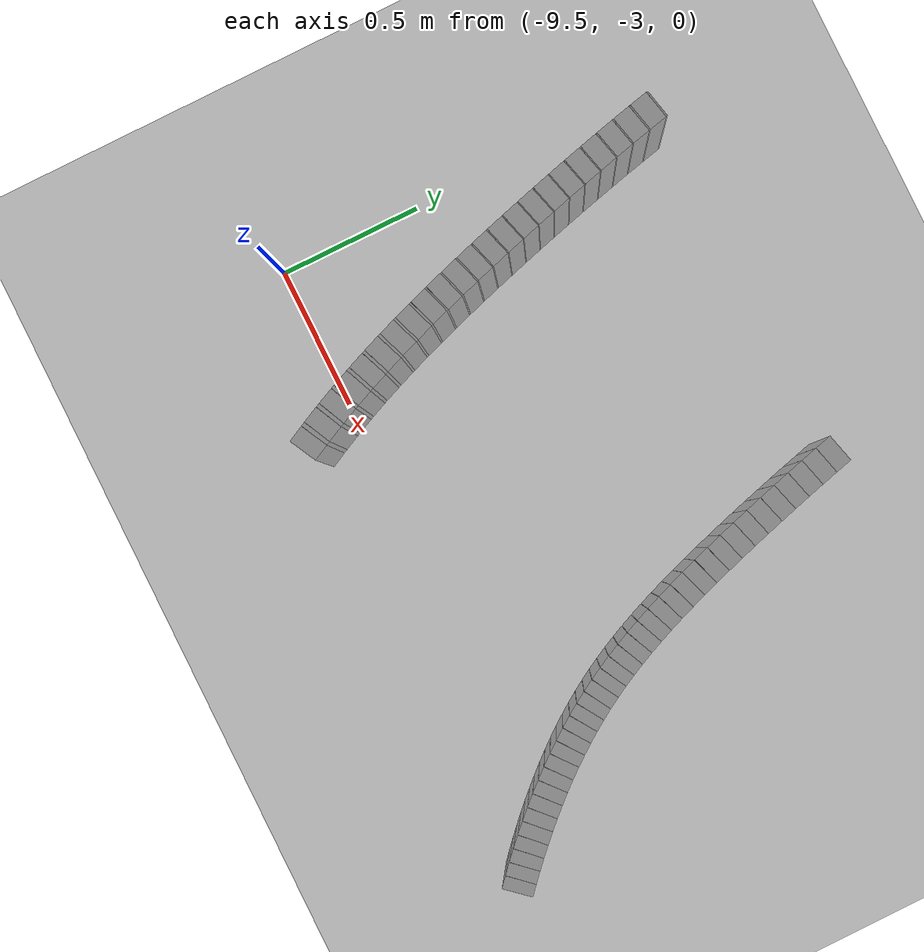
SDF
<sdf version="1.6">
 <world name="default">
  <include><uri>model://ground_plane</uri></include>
  <include><uri>model://sun</uri></include>
  <model name="wall_395_outward">
   <static>true</static>
   <link name="link">
    <collision name="collision">
     <geometry><box><size>0.05821195113618507 0.1 0.45</size></box></geometry>
    </collision>
    <visual name="visual">
     <geometry><box><size>0.05821195113618507 0.1 0.45</size></box></geometry>
     <material>
      <script><uri>file://media/materials/scripts/gazebo.material</uri><name>Gazebo/Gray</name></script>
     </material>
    </visual>
   </link>
   <pose>-8.1308858343698 -1.6789535075727118 0.225 0 0 -1.318381393351221</pose>
  </model>
  <model name="wall_396_outward">
   <static>true</static>
   <link name="link">
    <collision name="collision">
     <geometry><box><size>0.05814935245894412 0.1 0.45</size></box></geometry>
    </collision>
    <visual name="visual">
     <geometry><box><size>0.05814935245894412 0.1 0.45</size></box></geometry>
     <material>
      <script><uri>file://media/materials/scripts/gazebo.material</uri><name>Gazebo/Gray</name></script>
     </material>
    </visual>
   </link>
   <pose>-8.116180850264804 -1.7352448836678194 0.225 0 0 -1.312168659641519</pose>
  </model>
  <model name="wall_397_outward">
   <static>true</static>
   <link name="link">
    <collision name="collision">
     <geometry><box><size>0.058085781952576014 0.1 0.45</size></box></geometry>
    </collision>
    <visual name="visual">
     <geometry><box><size>0.058085781952576014 0.1 0.45</size></box></geometry>
     <material>
      <script><uri>file://media/materials/scripts/gazebo.material</uri><name>Gazebo/Gray</name></script>
     </material>
    </visual>
   </link>
   <pose>-8.101152480375973 -1.7913855165712227 0.225 0 0 -1.3063029133184803</pose>
  </model>
  <model name="wall_398_outward">
   <static>true</static>
   <link name="link">
    <collision name="collision">
     <geometry><box><size>0.05797990014977049 0.1 0.45</size></box></geometry>
    </collision>
    <visual name="visual">
     <geometry><box><size>0.05797990014977049 0.1 0.45</size></box></geometry>
     <material>
      <script><uri>file://media/materials/scripts/gazebo.material</uri><name>Gazebo/Gray</name></script>
     </material>
    </visual>
   </link>
   <pose>-8.085822552971315 -1.8473567301709464 0.225 0 0 -1.3006175737035919</pose>
  </model>
  <model name="wall_399_outward">
   <static>true</static>
   <link name="link">
    <collision name="collision">
     <geometry><box><size>0.057799627029974064 0.1 0.45</size></box></geometry>
    </collision>
    <visual name="visual">
     <geometry><box><size>0.057799627029974064 0.1 0.45</size></box></geometry>
     <material>
      <script><uri>file://media/materials/scripts/gazebo.material</uri><name>Gazebo/Gray</name></script>
     </material>
    </visual>
   </link>
   <pose>-8.070213079575492 -1.9031020609063418 0.225 0 0 -1.2949228306404827</pose>
  </model>
  <model name="wall_400_outward">
   <static>true</static>
   <link name="link">
    <collision name="collision">
     <geometry><box><size>0.057512977800352534 0.1 0.45</size></box></geometry>
    </collision>
    <visual name="visual">
     <geometry><box><size>0.057512977800352534 0.1 0.45</size></box></geometry>
     <material>
      <script><uri>file://media/materials/scripts/gazebo.material</uri><name>Gazebo/Gray</name></script>
     </material>
    </visual>
   </link>
   <pose>-8.054344472347807 -1.9585313614264463 0.225 0 0 -1.2889996588835113</pose>
  </model>
  <model name="wall_401_outward">
   <static>true</static>
   <link name="link">
    <collision name="collision">
     <geometry><box><size>0.05709938101718008 0.1 0.45</size></box></geometry>
    </collision>
    <visual name="visual">
     <geometry><box><size>0.05709938101718008 0.1 0.45</size></box></geometry>
     <material>
      <script><uri>file://media/materials/scripts/gazebo.material</uri><name>Gazebo/Gray</name></script>
     </material>
    </visual>
   </link>
   <pose>-8.038233650260816 -2.013525962175695 0.225 0 0 -1.2826119508472835</pose>
  </model>
  <model name="wall_402_outward">
   <static>true</static>
   <link name="link">
    <collision name="collision">
     <geometry><box><size>0.05653692180230691 0.1 0.45</size></box></geometry>
    </collision>
    <visual name="visual">
     <geometry><box><size>0.05653692180230691 0.1 0.45</size></box></geometry>
     <material>
      <script><uri>file://media/materials/scripts/gazebo.material</uri><name>Gazebo/Gray</name></script>
     </material>
    </visual>
   </link>
   <pose>-8.021893052603005 -2.067943298795373 0.225 0 0 -1.2755128658795345</pose>
  </model>
  <model name="wall_403_outward">
   <static>true</static>
   <link name="link">
    <collision name="collision">
     <geometry><box><size>0.055815669454255964 0.1 0.45</size></box></geometry>
    </collision>
    <visual name="visual">
     <geometry><box><size>0.055815669454255964 0.1 0.45</size></box></geometry>
     <material>
      <script><uri>file://media/materials/scripts/gazebo.material</uri><name>Gazebo/Gray</name></script>
     </material>
    </visual>
   </link>
   <pose>-8.005329946140275 -2.1216218636624706 0.225 0 0 -1.2674435630677106</pose>
  </model>
  <model name="wall_404_outward">
   <static>true</static>
   <link name="link">
    <collision name="collision">
     <geometry><box><size>0.05493061438110024 0.1 0.45</size></box></geometry>
    </collision>
    <visual name="visual">
     <geometry><box><size>0.05493061438110024 0.1 0.45</size></box></geometry>
     <material>
      <script><uri>file://media/materials/scripts/gazebo.material</uri><name>Gazebo/Gray</name></script>
     </material>
    </visual>
   </link>
   <pose>-7.988545865404224 -2.174389405254221 0.225 0 0 -1.2581618058514372</pose>
  </model>
  <model name="wall_405_outward">
   <static>true</static>
   <link name="link">
    <collision name="collision">
     <geometry><box><size>0.05389266881828317 0.1 0.45</size></box></geometry>
    </collision>
    <visual name="visual">
     <geometry><box><size>0.05389266881828317 0.1 0.45</size></box></geometry>
     <material>
      <script><uri>file://media/materials/scripts/gazebo.material</uri><name>Gazebo/Gray</name></script>
     </material>
    </visual>
   </link>
   <pose>-7.971535670800401 -2.226073006038116 0.225 0 0 -1.24741775458545</pose>
  </model>
  <model name="wall_406_outward">
   <static>true</static>
   <link name="link">
    <collision name="collision">
     <geometry><box><size>0.05272155045150743 0.1 0.45</size></box></geometry>
    </collision>
    <visual name="visual">
     <geometry><box><size>0.05272155045150743 0.1 0.45</size></box></geometry>
     <material>
      <script><uri>file://media/materials/scripts/gazebo.material</uri><name>Gazebo/Gray</name></script>
     </material>
    </visual>
   </link>
   <pose>-7.954287270454104 -2.276511400843706 0.225 0 0 -1.2350328532588022</pose>
  </model>
  <model name="wall_407_outward">
   <static>true</static>
   <link name="link">
    <collision name="collision">
     <geometry><box><size>0.05143882195295317 0.1 0.45</size></box></geometry>
    </collision>
    <visual name="visual">
     <geometry><box><size>0.05143882195295317 0.1 0.45</size></box></geometry>
     <material>
      <script><uri>file://media/materials/scripts/gazebo.material</uri><name>Gazebo/Gray</name></script>
     </material>
    </visual>
   </link>
   <pose>-7.936783254761998 -2.32556054355285 0.225 0 0 -1.2208264825770343</pose>
  </model>
  <model name="wall_408_outward">
   <static>true</static>
   <link name="link">
    <collision name="collision">
     <geometry><box><size>0.05008978500344772 0.1 0.45</size></box></geometry>
    </collision>
    <visual name="visual">
     <geometry><box><size>0.05008978500344772 0.1 0.45</size></box></geometry>
     <material>
      <script><uri>file://media/materials/scripts/gazebo.material</uri><name>Gazebo/Gray</name></script>
     </material>
    </visual>
   </link>
   <pose>-7.918999414219465 -2.373106121417067 0.225 0 0 -1.2046983086617844</pose>
  </model>
  <model name="wall_409_outward">
   <static>true</static>
   <link name="link">
    <collision name="collision">
     <geometry><box><size>0.04871782051660424 0.1 0.45</size></box></geometry>
    </collision>
    <visual name="visual">
     <geometry><box><size>0.04871782051660424 0.1 0.45</size></box></geometry>
     <material>
      <script><uri>file://media/materials/scripts/gazebo.material</uri><name>Gazebo/Gray</name></script>
     </material>
    </visual>
   </link>
   <pose>-7.9009041892955505 -2.4190745781470504 0.225 0 0 -1.1866123697134197</pose>
  </model>
  <model name="wall_410_outward">
   <static>true</static>
   <link name="link">
    <collision name="collision">
     <geometry><box><size>0.04737031962142501 0.1 0.45</size></box></geometry>
    </collision>
    <visual name="visual">
     <geometry><box><size>0.04737031962142501 0.1 0.45</size></box></geometry>
     <material>
      <script><uri>file://media/materials/scripts/gazebo.material</uri><name>Gazebo/Gray</name></script>
     </material>
    </visual>
   </link>
   <pose>-7.882459305347823 -2.463434330825719 0.225 0 0 -1.166590841482702</pose>
  </model>
  <model name="wall_411_outward">
   <static>true</static>
   <link name="link">
    <collision name="collision">
     <geometry><box><size>0.04610877684373025 0.1 0.45</size></box></geometry>
    </collision>
    <visual name="visual">
     <geometry><box><size>0.04610877684373025 0.1 0.45</size></box></geometry>
     <material>
      <script><uri>file://media/materials/scripts/gazebo.material</uri><name>Gazebo/Gray</name></script>
     </material>
    </visual>
   </link>
   <pose>-7.863616345610257 -2.506204269717389 0.225 0 0 -1.1447458786771068</pose>
  </model>
  <model name="wall_412_outward">
   <static>true</static>
   <link name="link">
    <collision name="collision">
     <geometry><box><size>0.04498549173073428 0.1 0.45</size></box></geometry>
    </collision>
    <visual name="visual">
     <geometry><box><size>0.04498549173073428 0.1 0.45</size></box></geometry>
     <material>
      <script><uri>file://media/materials/scripts/gazebo.material</uri><name>Gazebo/Gray</name></script>
     </material>
    </visual>
   </link>
   <pose>-7.844314544729526 -2.5474558902235964 0.225 0 0 -1.1212717237775538</pose>
  </model>
  <model name="wall_413_outward">
   <static>true</static>
   <link name="link">
    <collision name="collision">
     <geometry><box><size>0.04404555700528966 0.1 0.45</size></box></geometry>
    </collision>
    <visual name="visual">
     <geometry><box><size>0.04404555700528966 0.1 0.45</size></box></geometry>
     <material>
      <script><uri>file://media/materials/scripts/gazebo.material</uri><name>Gazebo/Gray</name></script>
     </material>
    </visual>
   </link>
   <pose>-7.824481244674733 -2.587305188340973 0.225 0 0 -1.0964346244025418</pose>
  </model>
  <model name="wall_414_outward">
   <static>true</static>
   <link name="link">
    <collision name="collision">
     <geometry><box><size>0.043322268576749506 0.1 0.45</size></box></geometry>
    </collision>
    <visual name="visual">
     <geometry><box><size>0.043322268576749506 0.1 0.45</size></box></geometry>
     <material>
      <script><uri>file://media/materials/scripts/gazebo.material</uri><name>Gazebo/Gray</name></script>
     </material>
    </visual>
   </link>
   <pose>-7.804032388766186 -2.6259032328283123 0.225 0 0 -1.0705546135487913</pose>
  </model>
  <model name="wall_415_outward">
   <static>true</static>
   <link name="link">
    <collision name="collision">
     <geometry><box><size>0.04283508312259842 0.1 0.45</size></box></geometry>
    </collision>
    <visual name="visual">
     <geometry><box><size>0.04283508312259842 0.1 0.45</size></box></geometry>
     <material>
      <script><uri>file://media/materials/scripts/gazebo.material</uri><name>Gazebo/Gray</name></script>
     </material>
    </visual>
   </link>
   <pose>-7.782874858979155 -2.6634239486356264 0.225 0 0 -1.0439994739377827</pose>
  </model>
  <model name="wall_416_outward">
   <static>true</static>
   <link name="link">
    <collision name="collision">
     <geometry><box><size>0.042584367546733906 0.1 0.45</size></box></geometry>
    </collision>
    <visual name="visual">
     <geometry><box><size>0.042584367546733906 0.1 0.45</size></box></geometry>
     <material>
      <script><uri>file://media/materials/scripts/gazebo.material</uri><name>Gazebo/Gray</name></script>
     </material>
    </visual>
   </link>
   <pose>-7.760911491777801 -2.7000491083373865 0.225 0 0 -1.0171463563103256</pose>
  </model>
  <model name="wall_417_outward">
   <static>true</static>
   <link name="link">
    <collision name="collision">
     <geometry><box><size>0.04255844213476702 0.1 0.45</size></box></geometry>
    </collision>
    <visual name="visual">
     <geometry><box><size>0.04255844213476702 0.1 0.45</size></box></geometry>
     <material>
      <script><uri>file://media/materials/scripts/gazebo.material</uri><name>Gazebo/Gray</name></script>
     </material>
    </visual>
   </link>
   <pose>-7.738047121248815 -2.7359548229404558 0.225 0 0 -0.9903740538394763</pose>
  </model>
  <model name="wall_418_outward">
   <static>true</static>
   <link name="link">
    <collision name="collision">
     <geometry><box><size>0.04271638193979989 0.1 0.45</size></box></geometry>
    </collision>
    <visual name="visual">
     <geometry><box><size>0.04271638193979989 0.1 0.45</size></box></geometry>
     <material>
      <script><uri>file://media/materials/scripts/gazebo.material</uri><name>Gazebo/Gray</name></script>
     </material>
    </visual>
   </link>
   <pose>-7.714199563840436 -2.7712949957121946 0.225 0 0 -0.9640425169815828</pose>
  </model>
  <model name="wall_419_outward">
   <static>true</static>
   <link name="link">
    <collision name="collision">
     <geometry><box><size>0.04300837358246568 0.1 0.45</size></box></geometry>
    </collision>
    <visual name="visual">
     <geometry><box><size>0.04300837358246568 0.1 0.45</size></box></geometry>
     <material>
      <script><uri>file://media/materials/scripts/gazebo.material</uri><name>Gazebo/Gray</name></script>
     </material>
    </visual>
   </link>
   <pose>-7.689310852257572 -2.8061867446259643 0.225 0 0 -0.9384282047418996</pose>
  </model>
  <model name="wall_420_outward">
   <static>true</static>
   <link name="link">
    <collision name="collision">
     <geometry><box><size>0.04337685582218694 0.1 0.45</size></box></geometry>
    </collision>
    <visual name="visual">
     <geometry><box><size>0.04337685582218694 0.1 0.45</size></box></geometry>
     <material>
      <script><uri>file://media/materials/scripts/gazebo.material</uri><name>Gazebo/Gray</name></script>
     </material>
    </visual>
   </link>
   <pose>-7.663354206419127 -2.840705884843251 0.225 0 0 -0.9137745351272922</pose>
  </model>
  <model name="wall_421_outward">
   <static>true</static>
   <link name="link">
    <collision name="collision">
     <geometry><box><size>0.04375834729005685 0.1 0.45</size></box></geometry>
    </collision>
    <visual name="visual">
     <geometry><box><size>0.04375834729005685 0.1 0.45</size></box></geometry>
     <material>
      <script><uri>file://media/materials/scripts/gazebo.material</uri><name>Gazebo/Gray</name></script>
     </material>
    </visual>
   </link>
   <pose>-7.63634042885192 -2.8748837782883765 0.225 0 0 -0.8902171068428494</pose>
  </model>
  <model name="wall_422_outward">
   <static>true</static>
   <link name="link">
    <collision name="collision">
     <geometry><box><size>0.044096775139605866 0.1 0.45</size></box></geometry>
    </collision>
    <visual name="visual">
     <geometry><box><size>0.044096775139605866 0.1 0.45</size></box></geometry>
     <material>
      <script><uri>file://media/materials/scripts/gazebo.material</uri><name>Gazebo/Gray</name></script>
     </material>
    </visual>
   </link>
   <pose>-7.608319388354376 -2.9087099578767397 0.225 0 0 -0.8678421549626681</pose>
  </model>
  <model name="wall_423_outward">
   <static>true</static>
   <link name="link">
    <collision name="collision">
     <geometry><box><size>0.044334945137719475 0.1 0.45</size></box></geometry>
    </collision>
    <visual name="visual">
     <geometry><box><size>0.044334945137719475 0.1 0.45</size></box></geometry>
     <material>
      <script><uri>file://media/materials/scripts/gazebo.material</uri><name>Gazebo/Gray</name></script>
     </material>
    </visual>
   </link>
   <pose>-7.579379757030692 -2.9421363018485245 0.225 0 0 -0.8466471454775134</pose>
  </model>
  <model name="wall_424_outward">
   <static>true</static>
   <link name="link">
    <collision name="collision">
     <geometry><box><size>0.04443223209621711 0.1 0.45</size></box></geometry>
    </collision>
    <visual name="visual">
     <geometry><box><size>0.04443223209621711 0.1 0.45</size></box></geometry>
     <material>
      <script><uri>file://media/materials/scripts/gazebo.material</uri><name>Gazebo/Gray</name></script>
     </material>
    </visual>
   </link>
   <pose>-7.549644661530477 -2.975083663274793 0.225 0 0 -0.8265748984774882</pose>
  </model>
  <model name="wall_425_outward">
   <static>true</static>
   <link name="link">
    <collision name="collision">
     <geometry><box><size>0.04436278482124472 0.1 0.45</size></box></geometry>
    </collision>
    <visual name="visual">
     <geometry><box><size>0.04436278482124472 0.1 0.45</size></box></geometry>
     <material>
      <script><uri>file://media/materials/scripts/gazebo.material</uri><name>Gazebo/Gray</name></script>
     </material>
    </visual>
   </link>
   <pose>-7.519261547062305 -3.007453804973677 0.225 0 0 -0.8075136269832267</pose>
  </model>
  <model name="wall_426_outward">
   <static>true</static>
   <link name="link">
    <collision name="collision">
     <geometry><box><size>0.04411360003480594 0.1 0.45</size></box></geometry>
    </collision>
    <visual name="visual">
     <geometry><box><size>0.04411360003480594 0.1 0.45</size></box></geometry>
     <material>
      <script><uri>file://media/materials/scripts/gazebo.material</uri><name>Gazebo/Gray</name></script>
     </material>
    </visual>
   </link>
   <pose>-7.488392567427203 -3.0391391648187156 0.225 0 0 -0.7893314817673595</pose>
  </model>
  <model name="wall_427_outward">
   <static>true</static>
   <link name="link">
    <collision name="collision">
     <geometry><box><size>0.04367389135099751 0.1 0.45</size></box></geometry>
    </collision>
    <visual name="visual">
     <geometry><box><size>0.04367389135099751 0.1 0.45</size></box></geometry>
     <material>
      <script><uri>file://media/materials/scripts/gazebo.material</uri><name>Gazebo/Gray</name></script>
     </material>
    </visual>
   </link>
   <pose>-7.457208965057341 -3.0700276248456984 0.225 0 0 -0.7718677748311817</pose>
  </model>
  <model name="wall_428_outward">
   <static>true</static>
   <link name="link">
    <collision name="collision">
     <geometry><box><size>0.04306509522545253 0.1 0.45</size></box></geometry>
    </collision>
    <visual name="visual">
     <geometry><box><size>0.04306509522545253 0.1 0.45</size></box></geometry>
     <material>
      <script><uri>file://media/materials/scripts/gazebo.material</uri><name>Gazebo/Gray</name></script>
     </material>
    </visual>
   </link>
   <pose>-7.425877826519037 -3.1000132514747807 0.225 0 0 -0.7549294624082665</pose>
  </model>
  <model name="wall_429_outward">
   <static>true</static>
   <link name="link">
    <collision name="collision">
     <geometry><box><size>0.04231507628779955 0.1 0.45</size></box></geometry>
    </collision>
    <visual name="visual">
     <geometry><box><size>0.04231507628779955 0.1 0.45</size></box></geometry>
     <material>
      <script><uri>file://media/materials/scripts/gazebo.material</uri><name>Gazebo/Gray</name></script>
     </material>
    </visual>
   </link>
   <pose>-7.394548027992483 -3.1290091551227697 0.225 0 0 -0.7383836173590158</pose>
  </model>
  <model name="wall_430_outward">
   <static>true</static>
   <link name="link">
    <collision name="collision">
     <geometry><box><size>0.04145239931095147 0.1 0.45</size></box></geometry>
    </collision>
    <visual name="visual">
     <geometry><box><size>0.04145239931095147 0.1 0.45</size></box></geometry>
     <material>
      <script><uri>file://media/materials/scripts/gazebo.material</uri><name>Gazebo/Gray</name></script>
     </material>
    </visual>
   </link>
   <pose>-7.363347158227488 -3.1569490302088474 0.225 0 0 -0.7220772133817558</pose>
  </model>
  <model name="wall_473_inward">
   <static>true</static>
   <link name="link">
    <collision name="collision">
     <geometry><box><size>0.0054836879437870556 0.1 0.45</size></box></geometry>
    </collision>
    <visual name="visual">
     <geometry><box><size>0.0054836879437870556 0.1 0.45</size></box></geometry>
     <material>
      <script><uri>file://media/materials/scripts/gazebo.material</uri><name>Gazebo/Gray</name></script>
     </material>
    </visual>
   </link>
   <pose>-9.364304984034288 -1.6816352692039496 0.225 0 0 -1.3532084030767415</pose>
  </model>
  <model name="wall_474_inward">
   <static>true</static>
   <link name="link">
    <collision name="collision">
     <geometry><box><size>0.06440027067078398 0.1 0.45</size></box></geometry>
    </collision>
    <visual name="visual">
     <geometry><box><size>0.06440027067078398 0.1 0.45</size></box></geometry>
     <material>
      <script><uri>file://media/materials/scripts/gazebo.material</uri><name>Gazebo/Gray</name></script>
     </material>
    </visual>
   </link>
   <pose>-9.356618278350883 -1.7157212579671783 0.225 0 0 -1.3486386472188343</pose>
  </model>
  <model name="wall_475_inward">
   <static>true</static>
   <link name="link">
    <collision name="collision">
     <geometry><box><size>0.005097571608490391 0.1 0.45</size></box></geometry>
    </collision>
    <visual name="visual">
     <geometry><box><size>0.005097571608490391 0.1 0.45</size></box></geometry>
     <material>
      <script><uri>file://media/materials/scripts/gazebo.material</uri><name>Gazebo/Gray</name></script>
     </material>
    </visual>
   </link>
   <pose>-9.348951326168201 -1.7496137923013055 0.225 0 0 -1.3443906581021137</pose>
  </model>
  <model name="wall_476_inward">
   <static>true</static>
   <link name="link">
    <collision name="collision">
     <geometry><box><size>0.06362805311784146 0.1 0.45</size></box></geometry>
    </collision>
    <visual name="visual">
     <geometry><box><size>0.06362805311784146 0.1 0.45</size></box></geometry>
     <material>
      <script><uri>file://media/materials/scripts/gazebo.material</uri><name>Gazebo/Gray</name></script>
     </material>
    </visual>
   </link>
   <pose>-9.341106054656036 -1.7830690329245313 0.225 0 0 -1.3401426689858034</pose>
  </model>
  <model name="wall_477_inward">
   <static>true</static>
   <link name="link">
    <collision name="collision">
     <geometry><box><size>0.004712266347877589 0.1 0.45</size></box></geometry>
    </collision>
    <visual name="visual">
     <geometry><box><size>0.004712266347877589 0.1 0.45</size></box></geometry>
     <material>
      <script><uri>file://media/materials/scripts/gazebo.material</uri><name>Gazebo/Gray</name></script>
     </material>
    </visual>
   </link>
   <pose>-9.333285277418923 -1.8163321371645813 0.225 0 0 -1.3362157702701734</pose>
  </model>
  <model name="wall_478_inward">
   <static>true</static>
   <link name="link">
    <collision name="collision">
     <geometry><box><size>0.06298981813277002 0.1 0.45</size></box></geometry>
    </collision>
    <visual name="visual">
     <geometry><box><size>0.06298981813277002 0.1 0.45</size></box></geometry>
     <material>
      <script><uri>file://media/materials/scripts/gazebo.material</uri><name>Gazebo/Gray</name></script>
     </material>
    </visual>
   </link>
   <pose>-9.325296875433414 -1.849227081307662 0.225 0 0 -1.332288871554399</pose>
  </model>
  <model name="wall_479_inward">
   <static>true</static>
   <link name="link">
    <collision name="collision">
     <geometry><box><size>0.004343376911574387 0.1 0.45</size></box></geometry>
    </collision>
    <visual name="visual">
     <geometry><box><size>0.004343376911574387 0.1 0.45</size></box></geometry>
     <material>
      <script><uri>file://media/materials/scripts/gazebo.material</uri><name>Gazebo/Gray</name></script>
     </material>
    </visual>
   </link>
   <pose>-9.317335419833972 -1.8819387629735265 0.225 0 0 -1.3286693828919287</pose>
  </model>
  <model name="wall_480_inward">
   <static>true</static>
   <link name="link">
    <collision name="collision">
     <geometry><box><size>0.062476716910622024 0.1 0.45</size></box></geometry>
    </collision>
    <visual name="visual">
     <geometry><box><size>0.062476716910622024 0.1 0.45</size></box></geometry>
     <material>
      <script><uri>file://media/materials/scripts/gazebo.material</uri><name>Gazebo/Gray</name></script>
     </material>
    </visual>
   </link>
   <pose>-9.30921503797068 -1.9143469370079569 0.225 0 0 -1.3250498942291746</pose>
  </model>
  <model name="wall_481_inward">
   <static>true</static>
   <link name="link">
    <collision name="collision">
     <geometry><box><size>0.004001093113244218 0.1 0.45</size></box></geometry>
    </collision>
    <visual name="visual">
     <geometry><box><size>0.004001093113244218 0.1 0.45</size></box></geometry>
     <material>
      <script><uri>file://media/materials/scripts/gazebo.material</uri><name>Gazebo/Gray</name></script>
     </material>
    </visual>
   </link>
   <pose>-9.301122196686263 -1.9465855789083317 0.225 0 0 -1.3217156437902673</pose>
  </model>
  <model name="wall_482_inward">
   <static>true</static>
   <link name="link">
    <collision name="collision">
     <geometry><box><size>0.06207633492092416 0.1 0.45</size></box></geometry>
    </collision>
    <visual name="visual">
     <geometry><box><size>0.06207633492092416 0.1 0.45</size></box></geometry>
     <material>
      <script><uri>file://media/materials/scripts/gazebo.material</uri><name>Gazebo/Gray</name></script>
     </material>
    </visual>
   </link>
   <pose>-9.292877467727058 -1.978579021642544 0.225 0 0 -1.3183813933512358</pose>
  </model>
  <model name="wall_483_inward">
   <static>true</static>
   <link name="link">
    <collision name="collision">
     <geometry><box><size>0.0037276342308394175 0.1 0.45</size></box></geometry>
    </collision>
    <visual name="visual">
     <geometry><box><size>0.0037276342308394175 0.1 0.45</size></box></geometry>
     <material>
      <script><uri>file://media/materials/scripts/gazebo.material</uri><name>Gazebo/Gray</name></script>
     </material>
    </visual>
   </link>
   <pose>-9.284654820299805 -2.010436957861009 0.225 0 0 -1.3152750264962454</pose>
  </model>
  <model name="wall_484_inward">
   <static>true</static>
   <link name="link">
    <collision name="collision">
     <geometry><box><size>0.06177290750936368 0.1 0.45</size></box></geometry>
    </collision>
    <visual name="visual">
     <geometry><box><size>0.06177290750936368 0.1 0.45</size></box></geometry>
     <material>
      <script><uri>file://media/materials/scripts/gazebo.material</uri><name>Gazebo/Gray</name></script>
     </material>
    </visual>
   </link>
   <pose>-9.27628440363488 -2.0420994879467473 0.225 0 0 -1.3121686596415314</pose>
  </model>
  <model name="wall_485_inward">
   <static>true</static>
   <link name="link">
    <collision name="collision">
     <geometry><box><size>0.003519442748267805 0.1 0.45</size></box></geometry>
    </collision>
    <visual name="visual">
     <geometry><box><size>0.003519442748267805 0.1 0.45</size></box></geometry>
     <material>
      <script><uri>file://media/materials/scripts/gazebo.material</uri><name>Gazebo/Gray</name></script>
     </material>
    </visual>
   </link>
   <pose>-9.2679300229965 -2.0736585850056386 0.225 0 0 -1.3092357864798498</pose>
  </model>
  <model name="wall_486_inward">
   <static>true</static>
   <link name="link">
    <collision name="collision">
     <geometry><box><size>0.061551117373752594 0.1 0.45</size></box></geometry>
    </collision>
    <visual name="visual">
     <geometry><box><size>0.061551117373752594 0.1 0.45</size></box></geometry>
     <material>
      <script><uri>file://media/materials/scripts/gazebo.material</uri><name>Gazebo/Gray</name></script>
     </material>
    </visual>
   </link>
   <pose>-9.259429622826824 -2.1050637944423616 0.225 0 0 -1.3063029133184785</pose>
  </model>
  <model name="wall_487_inward">
   <static>true</static>
   <link name="link">
    <collision name="collision">
     <geometry><box><size>0.0034111991747475356 0.1 0.45</size></box></geometry>
    </collision>
    <visual name="visual">
     <geometry><box><size>0.0034111991747475356 0.1 0.45</size></box></geometry>
     <material>
      <script><uri>file://media/materials/scripts/gazebo.material</uri><name>Gazebo/Gray</name></script>
     </material>
    </visual>
   </link>
   <pose>-9.25093370961266 -2.1364141481457657 0.225 0 0 -1.3034602435108926</pose>
  </model>
  <model name="wall_488_inward">
   <static>true</static>
   <link name="link">
    <collision name="collision">
     <geometry><box><size>0.061393934164660276 0.1 0.45</size></box></geometry>
    </collision>
    <visual name="visual">
     <geometry><box><size>0.061393934164660276 0.1 0.45</size></box></geometry>
     <material>
      <script><uri>file://media/materials/scripts/gazebo.material</uri><name>Gazebo/Gray</name></script>
     </material>
    </visual>
   </link>
   <pose>-9.242290018775687 -2.16764254087445 0.225 0 0 -1.3006175737035819</pose>
  </model>
  <model name="wall_489_inward">
   <static>true</static>
   <link name="link">
    <collision name="collision">
     <geometry><box><size>0.003416841220828156 0.1 0.45</size></box></geometry>
    </collision>
    <visual name="visual">
     <geometry><box><size>0.003416841220828156 0.1 0.45</size></box></geometry>
     <material>
      <script><uri>file://media/materials/scripts/gazebo.material</uri><name>Gazebo/Gray</name></script>
     </material>
    </visual>
   </link>
   <pose>-9.233636214409568 -2.1988710598326824 0.225 0 0 -1.297770202172287</pose>
  </model>
  <model name="wall_490_inward">
   <static>true</static>
   <link name="link">
    <collision name="collision">
     <geometry><box><size>0.061285011287943614 0.1 0.45</size></box></geometry>
    </collision>
    <visual name="visual">
     <geometry><box><size>0.061285011287943614 0.1 0.45</size></box></geometry>
     <material>
      <script><uri>file://media/materials/scripts/gazebo.material</uri><name>Gazebo/Gray</name></script>
     </material>
    </visual>
   </link>
   <pose>-9.224828908676574 -2.23000003943066 0.225 0 0 -1.2949228306404914</pose>
  </model>
  <model name="wall_491_inward">
   <static>true</static>
   <link name="link">
    <collision name="collision">
     <geometry><box><size>0.0035538978589804556 0.1 0.45</size></box></geometry>
    </collision>
    <visual name="visual">
     <geometry><box><size>0.0035538978589804556 0.1 0.45</size></box></geometry>
     <material>
      <script><uri>file://media/materials/scripts/gazebo.material</uri><name>Gazebo/Gray</name></script>
     </material>
    </visual>
   </link>
   <pose>-9.215993192769826 -2.2611921968051414 0.225 0 0 -1.2919612447617568</pose>
  </model>
  <model name="wall_492_inward">
   <static>true</static>
   <link name="link">
    <collision name="collision">
     <geometry><box><size>0.06120625344967528 0.1 0.45</size></box></geometry>
    </collision>
    <visual name="visual">
     <geometry><box><size>0.06120625344967528 0.1 0.45</size></box></geometry>
     <material>
      <script><uri>file://media/materials/scripts/gazebo.material</uri><name>Gazebo/Gray</name></script>
     </material>
    </visual>
   </link>
   <pose>-9.206993937016318 -2.2922965729971683 0.225 0 0 -1.2889996588835142</pose>
  </model>
  <model name="wall_493_inward">
   <static>true</static>
   <link name="link">
    <collision name="collision">
     <geometry><box><size>0.003832618305833463 0.1 0.45</size></box></geometry>
    </collision>
    <visual name="visual">
     <geometry><box><size>0.003832618305833463 0.1 0.45</size></box></geometry>
     <material>
      <script><uri>file://media/materials/scripts/gazebo.material</uri><name>Gazebo/Gray</name></script>
     </material>
    </visual>
   </link>
   <pose>-9.197944994252383 -2.3235316453749 0.225 0 0 -1.2858058048654553</pose>
  </model>
  <model name="wall_494_inward">
   <static>true</static>
   <link name="link">
    <collision name="collision">
     <geometry><box><size>0.06114543437860245 0.1 0.45</size></box></geometry>
    </collision>
    <visual name="visual">
     <geometry><box><size>0.06114543437860245 0.1 0.45</size></box></geometry>
     <material>
      <script><uri>file://media/materials/scripts/gazebo.material</uri><name>Gazebo/Gray</name></script>
     </material>
    </visual>
   </link>
   <pose>-9.188717095696143 -2.354682602395114 0.225 0 0 -1.282611950847278</pose>
  </model>
  <model name="wall_495_inward">
   <static>true</static>
   <link name="link">
    <collision name="collision">
     <geometry><box><size>0.004259442036342859 0.1 0.45</size></box></geometry>
    </collision>
    <visual name="visual">
     <geometry><box><size>0.004259442036342859 0.1 0.45</size></box></geometry>
     <material>
      <script><uri>file://media/materials/scripts/gazebo.material</uri><name>Gazebo/Gray</name></script>
     </material>
    </visual>
   </link>
   <pose>-9.179415428193122 -2.3860342790013704 0.225 0 0 -1.279062408363335</pose>
  </model>
  <model name="wall_496_inward">
   <static>true</static>
   <link name="link">
    <collision name="collision">
     <geometry><box><size>0.06108746021637229 0.1 0.45</size></box></geometry>
    </collision>
    <visual name="visual">
     <geometry><box><size>0.06108746021637229 0.1 0.45</size></box></geometry>
     <material>
      <script><uri>file://media/materials/scripts/gazebo.material</uri><name>Gazebo/Gray</name></script>
     </material>
    </visual>
   </link>
   <pose>-9.16991432897365 -2.417295800118432 0.225 0 0 -1.2755128658795227</pose>
  </model>
  <model name="wall_497_inward">
   <static>true</static>
   <link name="link">
    <collision name="collision">
     <geometry><box><size>0.004841568551561901 0.1 0.45</size></box></geometry>
    </collision>
    <visual name="visual">
     <geometry><box><size>0.004841568551561901 0.1 0.45</size></box></geometry>
     <material>
      <script><uri>file://media/materials/scripts/gazebo.material</uri><name>Gazebo/Gray</name></script>
     </material>
    </visual>
   </link>
   <pose>-9.160311952341528 -2.4488307389635455 0.225 0 0 -1.2714782144738879</pose>
  </model>
  <model name="wall_498_inward">
   <static>true</static>
   <link name="link">
    <collision name="collision">
     <geometry><box><size>0.06102102058916766 0.1 0.45</size></box></geometry>
    </collision>
    <visual name="visual">
     <geometry><box><size>0.06102102058916766 0.1 0.45</size></box></geometry>
     <material>
      <script><uri>file://media/materials/scripts/gazebo.material</uri><name>Gazebo/Gray</name></script>
     </material>
    </visual>
   </link>
   <pose>-9.15048399166842 -2.480261299709044 0.225 0 0 -1.2674435630676975</pose>
  </model>
  <model name="wall_499_inward">
   <static>true</static>
   <link name="link">
    <collision name="collision">
     <geometry><box><size>0.0055690343389523085 0.1 0.45</size></box></geometry>
    </collision>
    <visual name="visual">
     <geometry><box><size>0.0055690343389523085 0.1 0.45</size></box></geometry>
     <material>
      <script><uri>file://media/materials/scripts/gazebo.material</uri><name>Gazebo/Gray</name></script>
     </material>
    </visual>
   </link>
   <pose>-9.140525725654589 -2.512032197745608 0.225 0 0 -1.2628026844594746</pose>
  </model>
  <model name="wall_500_inward">
   <static>true</static>
   <link name="link">
    <collision name="collision">
     <geometry><box><size>0.06093840792299179 0.1 0.45</size></box></geometry>
    </collision>
    <visual name="visual">
     <geometry><box><size>0.06093840792299179 0.1 0.45</size></box></geometry>
     <material>
      <script><uri>file://media/materials/scripts/gazebo.material</uri><name>Gazebo/Gray</name></script>
     </material>
    </visual>
   </link>
   <pose>-9.130310299830402 -2.5436779433835865 0.225 0 0 -1.2581618058514448</pose>
  </model>
  <model name="wall_501_inward">
   <static>true</static>
   <link name="link">
    <collision name="collision">
     <geometry><box><size>0.006446399753755848 0.1 0.45</size></box></geometry>
    </collision>
    <visual name="visual">
     <geometry><box><size>0.006446399753755848 0.1 0.45</size></box></geometry>
     <material>
      <script><uri>file://media/materials/scripts/gazebo.material</uri><name>Gazebo/Gray</name></script>
     </material>
    </visual>
   </link>
   <pose>-9.11993118310572 -2.5757317914875104 0.225 0 0 -1.252789780218315</pose>
  </model>
  <model name="wall_502_inward">
   <static>true</static>
   <link name="link">
    <collision name="collision">
     <geometry><box><size>0.0608314330947513 0.1 0.45</size></box></geometry>
    </collision>
    <visual name="visual">
     <geometry><box><size>0.0608314330947513 0.1 0.45</size></box></geometry>
     <material>
      <script><uri>file://media/materials/scripts/gazebo.material</uri><name>Gazebo/Gray</name></script>
     </material>
    </visual>
   </link>
   <pose>-9.109258115747206 -2.607632567374309 0.225 0 0 -1.247417754585441</pose>
  </model>
  <model name="wall_503_inward">
   <static>true</static>
   <link name="link">
    <collision name="collision">
     <geometry><box><size>0.00743089330437498 0.1 0.45</size></box></geometry>
    </collision>
    <visual name="visual">
     <geometry><box><size>0.00743089330437498 0.1 0.45</size></box></geometry>
     <material>
      <script><uri>file://media/materials/scripts/gazebo.material</uri><name>Gazebo/Gray</name></script>
     </material>
    </visual>
   </link>
   <pose>-9.098390401523783 -2.639987238682685 0.225 0 0 -1.2412253039221386</pose>
  </model>
  <model name="wall_504_inward">
   <static>true</static>
   <link name="link">
    <collision name="collision">
     <geometry><box><size>0.060699051226459945 0.1 0.45</size></box></geometry>
    </collision>
    <visual name="visual">
     <geometry><box><size>0.060699051226459945 0.1 0.45</size></box></geometry>
     <material>
      <script><uri>file://media/materials/scripts/gazebo.material</uri><name>Gazebo/Gray</name></script>
     </material>
    </visual>
   </link>
   <pose>-9.087188076471804 -2.6721575032893643 0.225 0 0 -1.235032853258811</pose>
  </model>
  <model name="wall_505_inward">
   <static>true</static>
   <link name="link">
    <collision name="collision">
     <geometry><box><size>0.008523750730657953 0.1 0.45</size></box></geometry>
    </collision>
    <visual name="visual">
     <geometry><box><size>0.008523750730657953 0.1 0.45</size></box></geometry>
     <material>
      <script><uri>file://media/materials/scripts/gazebo.material</uri><name>Gazebo/Gray</name></script>
     </material>
    </visual>
   </link>
   <pose>-9.075755415528441 -2.7048260939431046 0.225 0 0 -1.2279296679179932</pose>
  </model>
  <model name="wall_506_inward">
   <static>true</static>
   <link name="link">
    <collision name="collision">
     <geometry><box><size>0.0605393618955347 0.1 0.45</size></box></geometry>
    </collision>
    <visual name="visual">
     <geometry><box><size>0.0605393618955347 0.1 0.45</size></box></geometry>
     <material>
      <script><uri>file://media/materials/scripts/gazebo.material</uri><name>Gazebo/Gray</name></script>
     </material>
    </visual>
   </link>
   <pose>-9.063944073244755 -2.737274731293237 0.225 0 0 -1.2208264825770374</pose>
  </model>
  <model name="wall_507_inward">
   <static>true</static>
   <link name="link">
    <collision name="collision">
     <geometry><box><size>0.009676799468786447 0.1 0.45</size></box></geometry>
    </collision>
    <visual name="visual">
     <geometry><box><size>0.009676799468786447 0.1 0.45</size></box></geometry>
     <material>
      <script><uri>file://media/materials/scripts/gazebo.material</uri><name>Gazebo/Gray</name></script>
     </material>
    </visual>
   </link>
   <pose>-9.0518699860541 -2.7702411418308714 0.225 0 0 -1.212762395619477</pose>
  </model>
  <model name="wall_508_inward">
   <static>true</static>
   <link name="link">
    <collision name="collision">
     <geometry><box><size>0.06035427164915067 0.1 0.45</size></box></geometry>
    </collision>
    <visual name="visual">
     <geometry><box><size>0.06035427164915067 0.1 0.45</size></box></geometry>
     <material>
      <script><uri>file://media/materials/scripts/gazebo.material</uri><name>Gazebo/Gray</name></script>
     </material>
    </visual>
   </link>
   <pose>-9.03937179555048 -2.8029500621703294 0.225 0 0 -1.2046983086617842</pose>
  </model>
  <model name="wall_509_inward">
   <static>true</static>
   <link name="link">
    <collision name="collision">
     <geometry><box><size>0.010851415471321959 0.1 0.45</size></box></geometry>
    </collision>
    <visual name="visual">
     <geometry><box><size>0.010851415471321959 0.1 0.45</size></box></geometry>
     <material>
      <script><uri>file://media/materials/scripts/gazebo.material</uri><name>Gazebo/Gray</name></script>
     </material>
    </visual>
   </link>
   <pose>-9.026581143004325 -2.836175779436484 0.225 0 0 -1.1956553391875753</pose>
  </model>
  <model name="wall_510_inward">
   <static>true</static>
   <link name="link">
    <collision name="collision">
     <geometry><box><size>0.06015040922801061 0.1 0.45</size></box></geometry>
    </collision>
    <visual name="visual">
     <geometry><box><size>0.06015040922801061 0.1 0.45</size></box></geometry>
     <material>
      <script><uri>file://media/materials/scripts/gazebo.material</uri><name>Gazebo/Gray</name></script>
     </material>
    </visual>
   </link>
   <pose>-9.013320875503517 -2.869107022041696 0.225 0 0 -1.1866123697134177</pose>
  </model>
  <model name="wall_511_inward">
   <static>true</static>
   <link name="link">
    <collision name="collision">
     <geometry><box><size>0.012012716292894072 0.1 0.45</size></box></geometry>
    </collision>
    <visual name="visual">
     <geometry><box><size>0.012012716292894072 0.1 0.45</size></box></geometry>
     <material>
      <script><uri>file://media/materials/scripts/gazebo.material</uri><name>Gazebo/Gray</name></script>
     </material>
    </visual>
   </link>
   <pose>-8.999741776768696 -2.90253558985102 0.225 0 0 -1.176601605598033</pose>
  </model>
  <model name="wall_512_inward">
   <static>true</static>
   <link name="link">
    <collision name="collision">
     <geometry><box><size>0.059930728211051866 0.1 0.45</size></box></geometry>
    </collision>
    <visual name="visual">
     <geometry><box><size>0.059930728211051866 0.1 0.45</size></box></geometry>
     <material>
      <script><uri>file://media/materials/scripts/gazebo.material</uri><name>Gazebo/Gray</name></script>
     </material>
    </visual>
   </link>
   <pose>-8.985649916084636 -2.9356319072797907 0.225 0 0 -1.1665908414826995</pose>
  </model>
  <model name="wall_513_inward">
   <static>true</static>
   <link name="link">
    <collision name="collision">
     <geometry><box><size>0.013106717073189576 0.1 0.45</size></box></geometry>
    </collision>
    <visual name="visual">
     <geometry><box><size>0.013106717073189576 0.1 0.45</size></box></geometry>
     <material>
      <script><uri>file://media/materials/scripts/gazebo.material</uri><name>Gazebo/Gray</name></script>
     </material>
    </visual>
   </link>
   <pose>-8.971221870530254 -2.9691792645172326 0.225 0 0 -1.1556683600798732</pose>
  </model>
  <model name="wall_514_inward">
   <static>true</static>
   <link name="link">
    <collision name="collision">
     <geometry><box><size>0.05970509617485451 0.1 0.45</size></box></geometry>
    </collision>
    <visual name="visual">
     <geometry><box><size>0.05970509617485451 0.1 0.45</size></box></geometry>
     <material>
      <script><uri>file://media/materials/scripts/gazebo.material</uri><name>Gazebo/Gray</name></script>
     </material>
    </visual>
   </link>
   <pose>-8.956241466927914 -3.002359894498484 0.225 0 0 -1.1447458786771134</pose>
  </model>
  <model name="wall_515_inward">
   <static>true</static>
   <link name="link">
    <collision name="collision">
     <geometry><box><size>0.014084169564390214 0.1 0.45</size></box></geometry>
    </collision>
    <visual name="visual">
     <geometry><box><size>0.014084169564390214 0.1 0.45</size></box></geometry>
     <material>
      <script><uri>file://media/materials/scripts/gazebo.material</uri><name>Gazebo/Gray</name></script>
     </material>
    </visual>
   </link>
   <pose>-8.940918680830425 -3.035921735938696 0.225 0 0 -1.133008801227389</pose>
  </model>
  <model name="wall_516_inward">
   <static>true</static>
   <link name="link">
    <collision name="collision">
     <geometry><box><size>0.05947957447082853 0.1 0.45</size></box></geometry>
    </collision>
    <visual name="visual">
     <geometry><box><size>0.05947957447082853 0.1 0.45</size></box></geometry>
     <material>
      <script><uri>file://media/materials/scripts/gazebo.material</uri><name>Gazebo/Gray</name></script>
     </material>
    </visual>
   </link>
   <pose>-8.925010232485338 -3.0690849464259786 0.225 0 0 -1.1212717237775411</pose>
  </model>
  <model name="wall_517_inward">
   <static>true</static>
   <link name="link">
    <collision name="collision">
     <geometry><box><size>0.014901876589265731 0.1 0.45</size></box></geometry>
    </collision>
    <visual name="visual">
     <geometry><box><size>0.014901876589265731 0.1 0.45</size></box></geometry>
     <material>
      <script><uri>file://media/materials/scripts/gazebo.material</uri><name>Gazebo/Gray</name></script>
     </material>
    </visual>
   </link>
   <pose>-8.908766385188663 -3.1025401899209006 0.225 0 0 -1.1088531740900203</pose>
  </model>
  <model name="wall_518_inward">
   <static>true</static>
   <link name="link">
    <collision name="collision">
     <geometry><box><size>0.05926150650982148 0.1 0.45</size></box></geometry>
    </collision>
    <visual name="visual">
     <geometry><box><size>0.05926150650982148 0.1 0.45</size></box></geometry>
     <material>
      <script><uri>file://media/materials/scripts/gazebo.material</uri><name>Gazebo/Gray</name></script>
     </material>
    </visual>
   </link>
   <pose>-8.891911127646868 -3.1355692391581105 0.225 0 0 -1.0964346244025522</pose>
  </model>
 </world>
</sdf>
